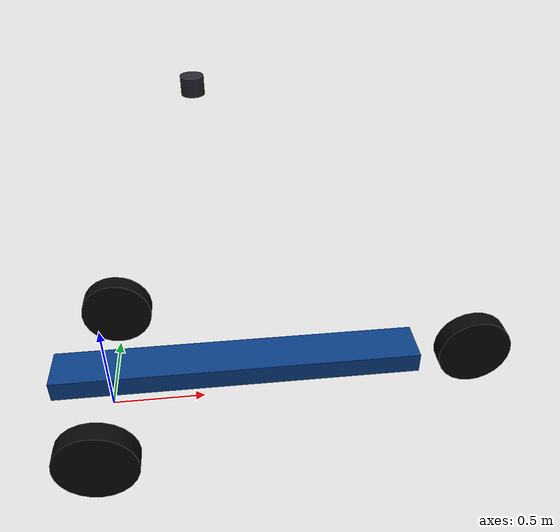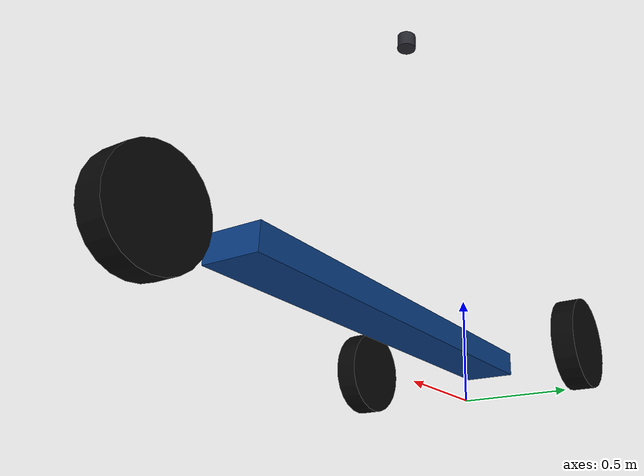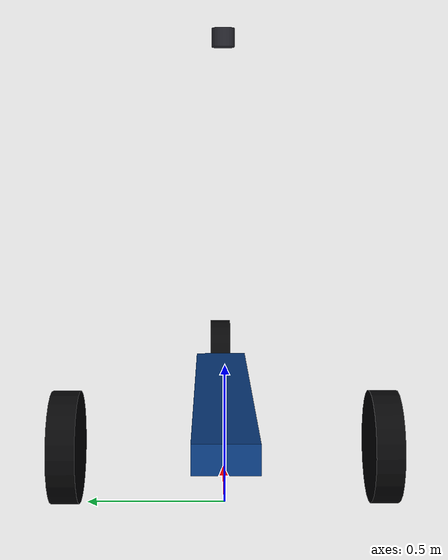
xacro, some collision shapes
<?xml version="1.0"?>
<robot xmlns:xacro="http://ros.org/wiki/xacro" name="etrike">
  <xacro:property name="wheel_base" value="2.000"/>
  <xacro:property name="rear_track" value="1.150"/>
  <xacro:property name="half_rear_track" value="0.575"/>
  <xacro:property name="wheel_radius" value="0.203"/>
  <xacro:property name="wheel_width" value="0.102"/>
  <xacro:property name="max_steer_angle" value="0.314"/>

  <xacro:property name="overall_length" value="2.635"/>
  <xacro:property name="overall_width" value="1.300"/>
  <xacro:property name="overall_height" value="1.700"/>
  <xacro:property name="ground_clearance" value="0.170"/>

  <!-- Visual-envelope split: front tire edge to rear body panel. Measure the
       physical vehicle before footprint-critical deployment. -->
  <xacro:property name="front_overhang" value="0.203"/>
  <xacro:property name="rear_overhang" value="0.432"/>

  <material name="body_blue"><color rgba="0.035 0.235 0.510 1.0"/></material>
  <material name="tire_black"><color rgba="0.025 0.025 0.030 1.0"/></material>

  <link name="base_footprint"/>

  <link name="base_link">
    <inertial>
      <origin xyz="0.550 0 0.800" rpy="0 0 0"/>
      <mass value="337.0"/>
      <inertia ixx="80.88" ixy="0" ixz="0" iyy="152.75" iyz="0" izz="152.75"/>
    </inertial>

    <visual name="solid_body">
      <origin xyz="0 0 0" rpy="0 0 0"/>
      <geometry>
        <mesh filename="package://etrike_vehicle_description/meshes/etrike_body_binary.stl" scale="1 1 1"/>
      </geometry>
      <material name="body_blue"/>
    </visual>

    <collision name="chassis_collision">
      <origin xyz="0.690 0 0.225" rpy="0 0 0"/>
      <geometry><box size="1.950 0.240 0.110"/></geometry>
    </collision>
    <collision name="lower_body_collision">
      <origin xyz="0.583 0 0.555" rpy="0 0 0"/>
      <geometry><box size="1.735 0.900 0.550"/></geometry>
    </collision>
    <collision name="cabin_collision">
      <origin xyz="0.550 0 1.245" rpy="0 0 0"/>
      <geometry><box size="1.650 1.100 0.830"/></geometry>
    </collision>
    <collision name="sloped_front_collision">
      <origin xyz="1.575 0 0.895" rpy="0 0.650 0"/>
      <geometry><box size="0.600 0.900 0.240"/></geometry>
    </collision>
    <collision name="front_apron_collision">
      <origin xyz="1.625 0 0.400" rpy="0 0 0"/>
      <geometry><box size="0.290 0.800 0.180"/></geometry>
    </collision>
  </link>

  <joint name="base_footprint_joint" type="fixed">
    <parent link="base_footprint"/>
    <child link="base_link"/>
    <origin xyz="0 0 0" rpy="0 0 0"/>
  </joint>

  <link name="rear_left_wheel_link">
    <inertial>
      <origin xyz="0 0 0" rpy="0 0 0"/>
      <mass value="8.0"/>
      <inertia ixx="0.0894" ixy="0" ixz="0" iyy="0.1648" iyz="0" izz="0.0894"/>
    </inertial>
    <visual name="rear_left_tire">
      <origin xyz="0 0 0" rpy="1.57079632679 0 0"/>
      <geometry><cylinder radius="${wheel_radius}" length="${wheel_width}"/></geometry>
      <material name="tire_black"/>
    </visual>
    <collision>
      <origin xyz="0 0 0" rpy="1.57079632679 0 0"/>
      <geometry><cylinder radius="${wheel_radius}" length="${wheel_width}"/></geometry>
    </collision>
  </link>
  <joint name="rear_left_wheel_joint" type="fixed">
    <parent link="base_link"/>
    <child link="rear_left_wheel_link"/>
    <origin xyz="0 ${half_rear_track} ${wheel_radius}" rpy="0 0 0"/>
  </joint>

  <link name="rear_right_wheel_link">
    <inertial>
      <origin xyz="0 0 0" rpy="0 0 0"/>
      <mass value="8.0"/>
      <inertia ixx="0.0894" ixy="0" ixz="0" iyy="0.1648" iyz="0" izz="0.0894"/>
    </inertial>
    <visual name="rear_right_tire">
      <origin xyz="0 0 0" rpy="1.57079632679 0 0"/>
      <geometry><cylinder radius="${wheel_radius}" length="${wheel_width}"/></geometry>
      <material name="tire_black"/>
    </visual>
    <collision>
      <origin xyz="0 0 0" rpy="1.57079632679 0 0"/>
      <geometry><cylinder radius="${wheel_radius}" length="${wheel_width}"/></geometry>
    </collision>
  </link>
  <joint name="rear_right_wheel_joint" type="fixed">
    <parent link="base_link"/>
    <child link="rear_right_wheel_link"/>
    <origin xyz="0 -${half_rear_track} ${wheel_radius}" rpy="0 0 0"/>
  </joint>

  <!-- Steering knuckle is at the documented front-wheel center. -->
  <link name="front_steering_link">
    <inertial>
      <origin xyz="-0.030 0 0.383" rpy="0 0 0"/>
      <mass value="1.0"/>
      <inertia ixx="0.0078" ixy="0" ixz="0" iyy="0.0078" iyz="0" izz="0.0006"/>
    </inertial>
    <collision name="steering_carrier_collision">
      <origin xyz="-0.030 0 0.383" rpy="0 0 0"/>
      <geometry><box size="0.060 0.060 0.360"/></geometry>
    </collision>
  </link>
  <joint name="front_steering_joint" type="fixed">
    <parent link="base_link"/>
    <child link="front_steering_link"/>
    <origin xyz="${wheel_base} 0 ${wheel_radius}" rpy="0 0 0"/>
  </joint>

  <link name="front_wheel_link">
    <inertial>
      <origin xyz="0 0 0" rpy="0 0 0"/>
      <mass value="8.0"/>
      <inertia ixx="0.0894" ixy="0" ixz="0" iyy="0.1648" iyz="0" izz="0.0894"/>
    </inertial>
    <visual name="front_tire">
      <origin xyz="0 0 0" rpy="1.57079632679 0 0"/>
      <geometry><cylinder radius="${wheel_radius}" length="${wheel_width}"/></geometry>
      <material name="tire_black"/>
    </visual>
    <collision>
      <origin xyz="0 0 0" rpy="1.57079632679 0 0"/>
      <geometry><cylinder radius="${wheel_radius}" length="${wheel_width}"/></geometry>
    </collision>
  </link>
  <joint name="front_wheel_joint" type="fixed">
    <parent link="front_steering_link"/>
    <child link="front_wheel_link"/>
    <origin xyz="0 0 0" rpy="0 0 0"/>
  </joint>

  <!-- Hesai XT32M2X 3D LiDAR Link (Autoware / ROS 2) -->
  <xacro:property name="lidar_x" value="0.575"/>
  <xacro:property name="lidar_y" value="0.000"/>
  <xacro:property name="lidar_roof_z" value="1.700"/>
  <xacro:property name="lidar_optical_height" value="0.0464"/>
  <xacro:property name="lidar_total_height" value="0.075"/>
  <xacro:property name="lidar_radius" value="0.0465"/>

  <material name="lidar_dark_grey"><color rgba="0.15 0.15 0.18 1.0"/></material>

  <link name="lidar_link">
    <inertial>
      <origin xyz="0 0 0" rpy="0 0 0"/>
      <mass value="0.490"/>
      <inertia ixx="0.00049" ixy="0" ixz="0" iyy="0.00049" iyz="0" izz="0.00053"/>
    </inertial>
    <visual name="hesai_xt32m2x_visual">
      <origin xyz="0 0 ${-lidar_optical_height + (lidar_total_height / 2.0)}" rpy="0 0 0"/>
      <geometry><cylinder radius="${lidar_radius}" length="${lidar_total_height}"/></geometry>
      <material name="lidar_dark_grey"/>
    </visual>
    <collision name="hesai_xt32m2x_collision">
      <origin xyz="0 0 ${-lidar_optical_height + (lidar_total_height / 2.0)}" rpy="0 0 0"/>
      <geometry><cylinder radius="${lidar_radius}" length="${lidar_total_height}"/></geometry>
    </collision>
  </link>

  <joint name="lidar_joint" type="fixed">
    <parent link="base_link"/>
    <child link="lidar_link"/>
    <!-- Sensor frame origin matches Hesai optical measurement origin (+46.4mm above roof) -->
    <origin xyz="${lidar_x} ${lidar_y} ${lidar_roof_z + lidar_optical_height}" rpy="0 0 0"/>
  </joint>

  <!-- IMU frame (co-located with base_link until dedicated IMU mount is calibrated) -->
  <link name="imu_link"/>
  <joint name="imu_joint" type="fixed">
    <parent link="base_link"/>
    <child link="imu_link"/>
    <origin xyz="0 0 0" rpy="0 0 0"/>
  </joint>
</robot>
